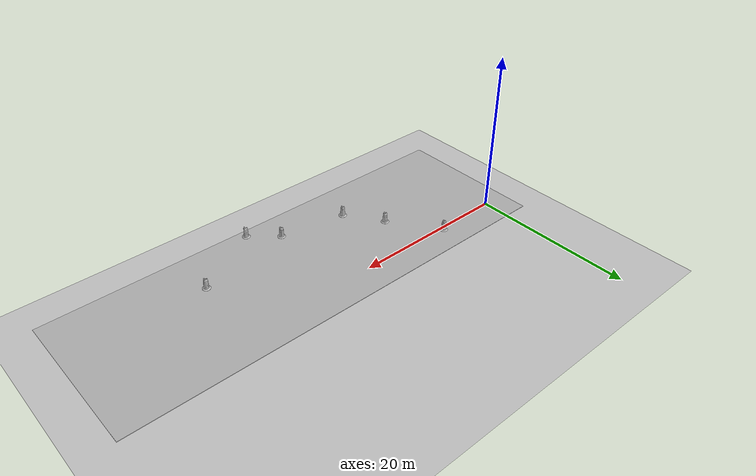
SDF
<sdf version="1.7">
 <world name="default">
  <light name="sun" type="directional">
   <pose>0 0 10 0 -0 0</pose>
   <diffuse>0.8 0.8 0.8 1</diffuse>
   <specular>0.2 0.2 0.2 1</specular>
   <attenuation>
    <range>1000</range>
    <constant>0.9</constant>
    <linear>0.01</linear>
    <quadratic>0.001</quadratic>
   </attenuation>
   <direction>-0.5 0.1 -0.9</direction>
   <spot><inner_angle>0</inner_angle><outer_angle>0</outer_angle><falloff>0</falloff></spot>
  </light>
  <model name="ground_plane">
   <static>1</static>
   <link name="link">
    <collision name="collision">
     <geometry><plane><normal>0 0 1</normal><size>100 100</size></plane></geometry>
     <surface>
      <contact><collide_bitmask>65535</collide_bitmask></contact>
      <friction><ode><mu>100</mu><mu2>50</mu2></ode></friction>
     </surface>
    </collision>
    <visual name="visual">
     <cast_shadows>0</cast_shadows>
     <geometry><plane><normal>0 0 1</normal><size>100 100</size></plane></geometry>
     <material>
      <script><uri>file://media/materials/scripts/gazebo.material</uri><name>Gazebo/Grey</name></script>
     </material>
    </visual>
   </link>
  </model>
  <gravity>0 0 -9.8</gravity>
  <magnetic_field>6e-06 2.3e-05 -4.2e-05</magnetic_field>
  <atmosphere type="adiabatic"/>
  <physics type="ode">
   <max_step_size>0.001</max_step_size>
   <real_time_factor>1</real_time_factor>
   <real_time_update_rate>1000</real_time_update_rate>
  </physics>
  <scene><ambient>0.4 0.4 0.4 1</ambient><background>0.7 0.7 0.7 1</background><shadows>1</shadows></scene>
  <spherical_coordinates>
   <surface_model>EARTH_WGS84</surface_model>
   <latitude_deg>0</latitude_deg>
   <longitude_deg>0</longitude_deg>
   <elevation>0</elevation>
   <heading_deg>0</heading_deg>
  </spherical_coordinates>
  <model name="igvc_track6">
   <static>1</static>
   <link name="link">
    <collision name="collision"><geometry><box><size>56.3321 18.6964 0.05</size></box></geometry></collision>
    <visual name="visual">
     <cast_shadows>0</cast_shadows>
     <geometry><box><size>56.3321 18.6964 0.05</size></box></geometry>
     <material>
      <script>
       <uri>model://igvc_track6/materials/scripts</uri>
       <uri>model://igvc_track6/materials/textures</uri>
       <name>vrc/ground</name>
      </script>
     </material>
    </visual>
   </link>
   <link name="link2">
    <collision name="collision"><geometry><box><size>56.3321 18.6964 0.05</size></box></geometry></collision>
    <visual name="visual">
     <cast_shadows>0</cast_shadows>
     <geometry><box><size>56.3321 18.6964 0.07</size></box></geometry>
     <material>
      <script>
       <uri>model://igvc_track6/materials/scripts</uri>
       <uri>model://igvc_track6/materials/textures</uri>
       <name>vrc/track</name>
      </script>
     </material>
    </visual>
   </link>
   <pose>24.9455 -5.83889 0 0 -0 0</pose>
  </model>
  <model name="Construction Barrel">
   <link name="link">
    <inertial>
     <pose>0 0 0.4 0 -0 0</pose>
     <mass>500</mass>
     <inertia><ixx>51.2096</ixx><iyy>51.2096</iyy><izz>25</izz><ixy>0</ixy><ixz>0</ixz><iyz>0</iyz></inertia>
    </inertial>
    <collision name="collision">
     <geometry><mesh><uri>model://construction_barrel/meshes/construction_barrel.dae</uri></mesh></geometry>
    </collision>
    <visual name="visual">
     <geometry><mesh><uri>model://construction_barrel/meshes/construction_barrel.dae</uri></mesh></geometry>
    </visual>
   </link>
   <pose>27.1927 -14.1333 0.024999 4e-06 -0 -0.000914</pose>
  </model>
  <model name="Construction Barrel_0">
   <link name="link">
    <inertial>
     <pose>0 0 0.4 0 -0 0</pose>
     <mass>500</mass>
     <inertia><ixx>51.2096</ixx><iyy>51.2096</iyy><izz>25</izz><ixy>0</ixy><ixz>0</ixz><iyz>0</iyz></inertia>
    </inertial>
    <collision name="collision">
     <geometry><mesh><uri>model://construction_barrel/meshes/construction_barrel.dae</uri></mesh></geometry>
    </collision>
    <visual name="visual">
     <geometry><mesh><uri>model://construction_barrel/meshes/construction_barrel.dae</uri></mesh></geometry>
    </visual>
   </link>
   <pose>8.12084 0.371586 0.024999 3e-06 0 -3.7e-05</pose>
  </model>
  <model name="Construction Barrel_1">
   <link name="link">
    <inertial>
     <pose>0 0 0.4 0 -0 0</pose>
     <mass>500</mass>
     <inertia><ixx>51.2096</ixx><iyy>51.2096</iyy><izz>25</izz><ixy>0</ixy><ixz>0</ixz><iyz>0</iyz></inertia>
    </inertial>
    <collision name="collision">
     <geometry><mesh><uri>model://construction_barrel/meshes/construction_barrel.dae</uri></mesh></geometry>
    </collision>
    <visual name="visual">
     <geometry><mesh><uri>model://construction_barrel/meshes/construction_barrel.dae</uri></mesh></geometry>
    </visual>
   </link>
   <pose>12.42 -5.50448 0.024999 -2e-06 -3e-06 -3.6e-05</pose>
  </model>
  <model name="Construction Barrel_2">
   <link name="link">
    <inertial>
     <pose>0 0 0.4 0 -0 0</pose>
     <mass>500</mass>
     <inertia><ixx>51.2096</ixx><iyy>51.2096</iyy><izz>25</izz><ixy>0</ixy><ixz>0</ixz><iyz>0</iyz></inertia>
    </inertial>
    <collision name="collision">
     <geometry><mesh><uri>model://construction_barrel/meshes/construction_barrel.dae</uri></mesh></geometry>
    </collision>
    <visual name="visual">
     <geometry><mesh><uri>model://construction_barrel/meshes/construction_barrel.dae</uri></mesh></geometry>
    </visual>
   </link>
   <pose>15.5136 -9.94562 0.024999 3e-06 -0 -3.8e-05</pose>
  </model>
  <model name="Construction Barrel_3">
   <link name="link">
    <inertial>
     <pose>0 0 0.4 0 -0 0</pose>
     <mass>500</mass>
     <inertia><ixx>51.2096</ixx><iyy>51.2096</iyy><izz>25</izz><ixy>0</ixy><ixz>0</ixz><iyz>0</iyz></inertia>
    </inertial>
    <collision name="collision">
     <geometry><mesh><uri>model://construction_barrel/meshes/construction_barrel.dae</uri></mesh></geometry>
    </collision>
    <visual name="visual">
     <geometry><mesh><uri>model://construction_barrel/meshes/construction_barrel.dae</uri></mesh></geometry>
    </visual>
   </link>
   <pose>35.9195 -9.10436 0.024999 -1e-06 -3e-06 -4e-05</pose>
  </model>
  <model name="Construction Barrel_4">
   <link name="link">
    <inertial>
     <pose>0 0 0.4 0 -0 0</pose>
     <mass>500</mass>
     <inertia><ixx>51.2096</ixx><iyy>51.2096</iyy><izz>25</izz><ixy>0</ixy><ixz>0</ixz><iyz>0</iyz></inertia>
    </inertial>
    <collision name="collision">
     <geometry><mesh><uri>model://construction_barrel/meshes/construction_barrel.dae</uri></mesh></geometry>
    </collision>
    <visual name="visual">
     <geometry><mesh><uri>model://construction_barrel/meshes/construction_barrel.dae</uri></mesh></geometry>
    </visual>
   </link>
   <pose>23.9341 -11.3799 0.025 -1e-06 -2e-06 -4.1e-05</pose>
  </model>
 </world>
</sdf>
